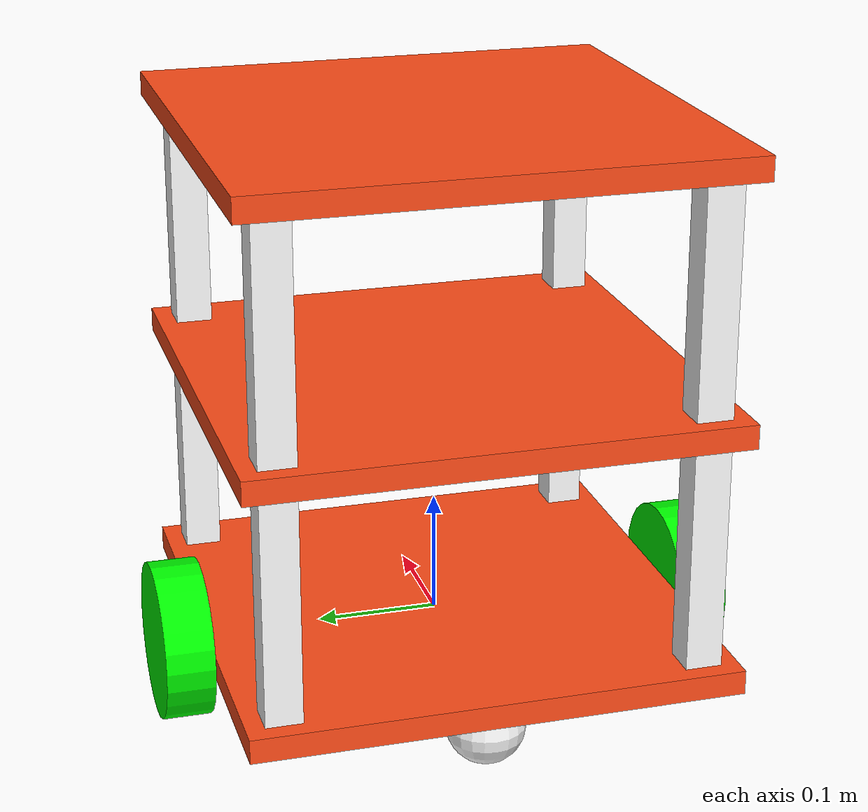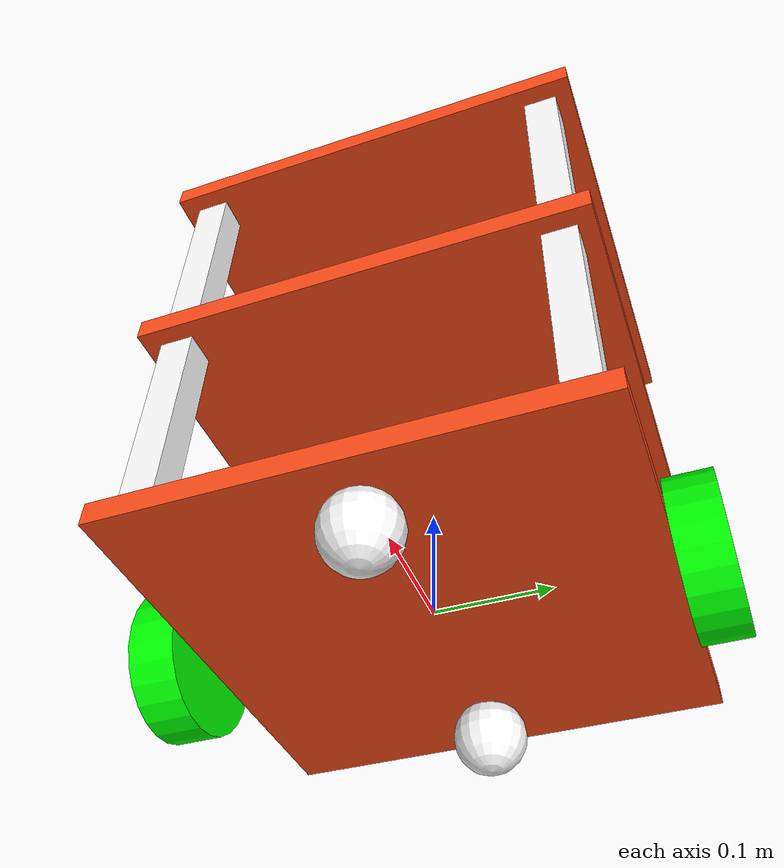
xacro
<?xml version="1.0"?>
<robot xmlns:xacro="http://www.ros.org/wiki/xacro">

<xacro:include filename="inertial_macros.xacro"/>

<material name="white">
    <color rgba="1 1 1 1" />
</material>

<material name="orange">
    <color rgba="1 0.3 0.1 1" />
</material>

<material name="blue">
    <color rgba="0.2 0.2 1 1" />
</material>

<material name="black">
    <color rgba="0 0 0 1" />
</material>

<material name="yellow">
    <color rgba="1 1 0 0" />
</material>

<material name="green">
    <color rgba="0 1 0 1" />
</material>

<material name="red">
    <color rgba="1 0 0 1" />
</material>

<link name="base_link">

</link>

<joint name="base_footprint_joint" type="fixed">
    <parent link="base_link"/>
    <child link="base_footprint"/>
    <origin xyz="0 0 0" rpy="0 0 0"/>
</joint>

<link name="base_footprint">
</link>

<joint name="chassis_wheel_joint" type="fixed">
    <parent link="base_link"/>
    <child link="base_chassis_wheel"/>
    <origin xyz="0 0 0"/>
</joint>

<link name="base_chassis_wheel">
    <visual>
        <origin xyz="0 0 0" rpy="0 0 0"/>
        <geometry>
            <box size="0.40 0.40 0.02"/>
        </geometry>
        <material name="orange"/>
    </visual>
    <collision>
        <origin xyz="0 0 0" rpy="0 0 0"/>
        <geometry>
            <box size="0.40 0.40 0.02"/>
        </geometry>
    </collision>
    <inertial>
        <mass value="0.5"/>
        <origin xyz="0 0 0" rpy="0 0 0"/>
        <inertia ixx="0.001" iyy="0.001" izz="0.001" ixy="0.0" ixz="0.0" iyz="0.0"/>
    </inertial>

</link>

<gazebo reference="base_chassis_wheel">
    <material>Gazebo/Orange</material>
</gazebo>

<joint name="right_wheel_joint" type="continuous">
    <parent link="base_link"/>
    <child link="right_wheel"/>
    <origin xyz="0 -0.22 0" rpy="1.57 0 0"/>
    <axis xyz="0 0 -1"/>
</joint>

<link name="right_wheel">
    <visual>
        <geometry>
            <cylinder radius="0.065" length="0.04"/>
        </geometry>
        <material name="green"/>
    </visual>
    <collision>
        <geometry>
            <cylinder radius="0.065" length="0.04"/>
        </geometry>
    </collision>
    <xacro:inertial_cylinder mass="1.95" length="0.04" radius="0.065">
            <origin xyz="0 0 0" rpy="0 0 0"/>
    </xacro:inertial_cylinder>
</link>

<gazebo reference="right_wheel">
    <material>Gazebo/Green</material>
</gazebo>

<joint name="left_wheel_joint" type="continuous">
    <parent link="base_link"/>
    <child link="left_wheel"/>
    <origin xyz="0 0.22 0" rpy="-1.57 0 0"/>
    <axis xyz="0 0 1"/>
</joint>

<link name="left_wheel">
    <visual>
        <geometry>
            <cylinder radius="0.065" length="0.04"/>
        </geometry>
        <material name="green"/>
    </visual>
    <collision>
        <geometry>
            <cylinder radius="0.065" length="0.04"/>
        </geometry>
    </collision>
    <xacro:inertial_cylinder mass="1.95" length="0.04" radius="0.065">
            <origin xyz="0 0 0" rpy="0 0 0"/>
    </xacro:inertial_cylinder>
</link>

<gazebo reference="left_wheel">
    <material>Gazebo/Green</material>
</gazebo>

<joint name="caster_wheel_front_joint" type="fixed">
    <parent link="base_chassis_wheel"/>
    <child link="caster_wheel_front"/>
    <origin xyz="0.15 0 -0.0325"  rpy="0 0 0"/>
    <axis xyz="0 1 1"/>
</joint>

<link name="caster_wheel_front">
    <visual>
        <geometry>
            <sphere radius="0.0325"/>
        </geometry>
        <material name="white"/>
    </visual>
    <collision>
        <geometry>
            <sphere radius="0.0325"/>
        </geometry>
    </collision>
    <xacro:inertial_sphere mass="0.2" radius="0.0325">
            <origin xyz="0 0 0" rpy="0 0 0"/>
    </xacro:inertial_sphere>
</link>

<gazebo reference="caster_wheel_front">
    <material>Gazebo/White</material>
</gazebo>

<joint name="caster_wheel_back_joint" type="fixed">
    <parent link="base_chassis_wheel"/>
    <child link="caster_wheel_back"/>
    <origin xyz="-0.15 0 -0.0325" rpy="0 0 0"/>
    <axis xyz="0 1 1"/>
</joint>

<link name="caster_wheel_back">
    <visual>
        <geometry>
            <sphere radius="0.0325"/>
        </geometry>
        <material name="white"/>
    </visual>
    <collision>
        <geometry>
            <sphere radius="0.0325"/>
        </geometry>
    </collision>
    <xacro:inertial_sphere mass="0.2" radius="0.0325">
            <origin xyz="0 0 0" rpy="0 0 0"/>
    </xacro:inertial_sphere>
</link>

<gazebo reference="caster_wheel_back">
    <material>Gazebo/White</material>
</gazebo>

<joint name="columnA_joint" type="fixed">
    <parent link="base_chassis_wheel"/>
    <child link="columnA"/>
    <origin xyz="-0.17 -0.17 0.21"/>
</joint>

<link name="columnA">
    <visual>
        <geometry>
            <box size="0.03 0.03 0.4"/>
        </geometry>
        <material name="white"/>
    </visual>
    <collision>
        <geometry>
            <box size="0.03 0.03 0.4"/>
        </geometry>
    </collision>
</link>

<joint name="columnB_joint" type="fixed">
    <parent link="base_chassis_wheel"/>
    <child link="columnB"/>
    <origin xyz="0.17 -0.17 0.21"/>
</joint>

<link name="columnB">
    <visual>
        <geometry>
            <box size="0.03 0.03 0.4"/>
        </geometry>
        <material name="white"/>
    </visual>
    <collision>
        <geometry>
            <box size="0.03 0.03 0.4"/>
        </geometry>
    </collision>
</link>

<joint name="columnC_joint" type="fixed">
    <parent link="base_chassis_wheel"/>
    <child link="columnC"/>
    <origin xyz="-0.17 0.17 0.21"/>
</joint>

<link name="columnC">
    <visual>
        <geometry>
            <box size="0.03 0.03 0.4"/>
        </geometry>
        <material name="white"/>
    </visual>
    <collision>
        <geometry>
            <box size="0.03 0.03 0.4"/>
        </geometry>
    </collision>
</link>

<joint name="columnD_joint" type="fixed">
    <parent link="base_chassis_wheel"/>
    <child link="columnD"/>
    <origin xyz="0.17 0.17 0.21"/>
</joint>

<link name="columnD">
    <visual>
        <geometry>
            <box size="0.03 0.03 0.4"/>
        </geometry>
        <material name="white"/>
    </visual>
    <collision>
        <geometry>
            <box size="0.03 0.03 0.4"/>
        </geometry>
    </collision>
</link>

<joint name="plateA_joint" type="fixed">
    <parent link="base_chassis_wheel"/>
    <child link="plateA"/>
    <origin xyz="0 0 0.21"/>
</joint>

<link name="plateA">
    <visual>
        <origin xyz="0 0 0" rpy="0 0 0"/>
        <geometry>
            <box size="0.40 0.40 0.02"/>
        </geometry>
        <material name="orange"/>
    </visual>
    <collision>
        <origin xyz="0 0 0" rpy="0 0 0"/>
        <geometry>
            <box size="0.40 0.40 0.02"/>
        </geometry>
    </collision>
    <inertial>
        <mass value="0.5"/>
        <origin xyz="0 0 0" rpy="0 0 0"/>
        <inertia ixx="0.001" iyy="0.001" izz="0.001" ixy="0.0" ixz="0.0" iyz="0.0"/>
    </inertial>

</link>

<gazebo reference="plateA">
    <material>Gazebo/Orange</material>
</gazebo>

<joint name="Topplate_joint" type="fixed">
    <parent link="plateA"/>
    <child link="Topplate"/>
    <origin xyz="0 0 0.21"/>
</joint>

<link name="Topplate">
    <visual>
        <origin xyz="0 0 0" rpy="0 0 0"/>
        <geometry>
            <box size="0.40 0.40 0.02"/>
        </geometry>
        <material name="orange"/>
    </visual>
    <collision>
        <origin xyz="0 0 0" rpy="0 0 0"/>
        <geometry>
            <box size="0.40 0.40 0.02"/>
        </geometry>
    </collision>
    <inertial>
        <mass value="0.5"/>
        <origin xyz="0 0 0" rpy="0 0 0"/>
        <inertia ixx="0.001" iyy="0.001" izz="0.001" ixy="0.0" ixz="0.0" iyz="0.0"/>
    </inertial>

</link>

<gazebo reference="Topplate">
    <material>Gazebo/Orange</material>
</gazebo>

</robot>
